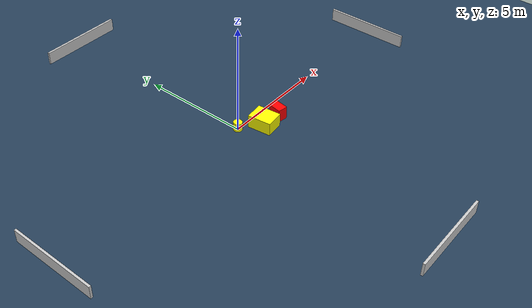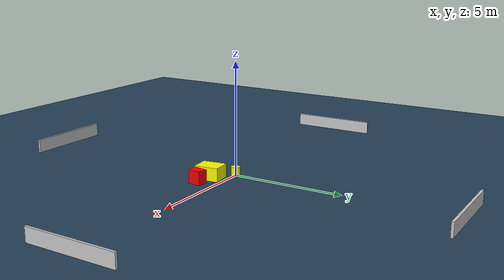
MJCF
<?xml version="1.0" ?>
<mujoco model="generated_environment">
  <option timestep="0.01" integrator="RK4" cone="elliptic"/>
  <default>
    <geom density="1"/>
  </default>
  <asset>
    <texture builtin="gradient" height="3072" name="skybox" rgb1="0.3 0.5 0.7" rgb2="0 0 0" type="skybox" width="512"/>
    <texture builtin="checker" height="300" name="groundplane" rgb1="0.2 0.3 0.4" rgb2="0.1 0.2 0.3" type="2d" width="300"/>
    <material name="groundplane" reflectance="0.2" texrepeat="5 5" texture="groundplane"/>
  </asset>
  <worldbody>
    <light dir="0 0 -1" directional="true" pos="0 0 1.5"/>
    <geom condim="3" friction="0.5 0.005 0.001" material="groundplane" name="floor" pos="0 0 0" size="0 0 0.05" type="plane"/>
    <body name="walls">
      <geom name="wall_1" condim="4" pos="-10.0 0.0 0.3" rgba="0.800000011920929 0.800000011920929 0.800000011920929 1.0" size="0.05 2.0 0.3" type="box"/>
      <geom name="wall_2" condim="4" pos="10.0 0.0 0.3" rgba="0.800000011920929 0.800000011920929 0.800000011920929 1.0" size="0.05 2.0 0.3" type="box"/>
      <geom name="wall_3" condim="4" pos="0.0 -10.0 0.3" rgba="0.800000011920929 0.800000011920929 0.800000011920929 1.0" size="2.0 0.05 0.3" type="box"/>
      <geom name="wall_4" condim="4" pos="0.0 10.0 0.3" rgba="0.800000011920929 0.800000011920929 0.800000011920929 1.0" size="2.0 0.05 0.3" type="box"/>
    </body>
    <body name="robot">
      <joint name="joint_x" type="slide" pos="0 0 0" axis="1 0 0"/>
      <joint name="joint_y" type="slide" pos="0 0 0" axis="0 1 0"/>
      <geom name="robot" type="cylinder" pos="0.0 0.0 0.2" size="0.2 0.2 0.0" mass="5.0" friction="1.0 0.005 0.0001" condim="4" rgba="1.0 1.0 0.0 1.0"/>
    </body>
    <body name="obstacle_1_movable">
      <geom name="obstacle_1_movable" condim="4" pos="0.8965798504301385 -0.7119439941255374 0.3" euler="0 0 6.560932756670312" friction="0.0 0.005 0.001" rgba="1.0 1.0 0.0 1.0" size="0.42490839205785835 0.5343266640018547 0.3" type="box" mass="0.1"/>
      <joint type="free"/>
    </body>
    <body name="obstacle_2_static">
      <geom name="obstacle_2_static" condim="4" pos="1.771044814863885 -0.7795623057427499 0.3" euler="0 0 80.87033032870406" friction="0.0 0.005 0.001" rgba="1.0 0.0 0.0 1.0" size="0.3011625352563626 0.22854622425107254 0.3" type="box"/>
    </body>
  </worldbody>
  <actuator>
    <motor name="actuator_x" joint="joint_x" gear="1" ctrlrange="-1 1"/>
    <motor name="actuator_y" joint="joint_y" gear="1" ctrlrange="-1 1"/>
  </actuator>
</mujoco>
